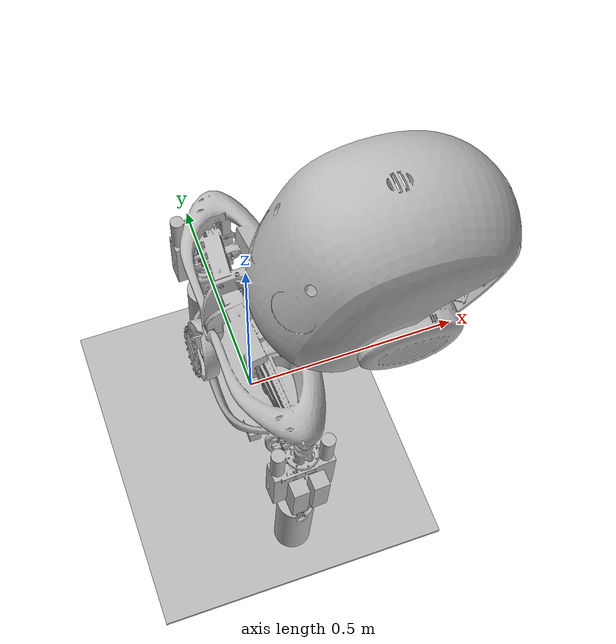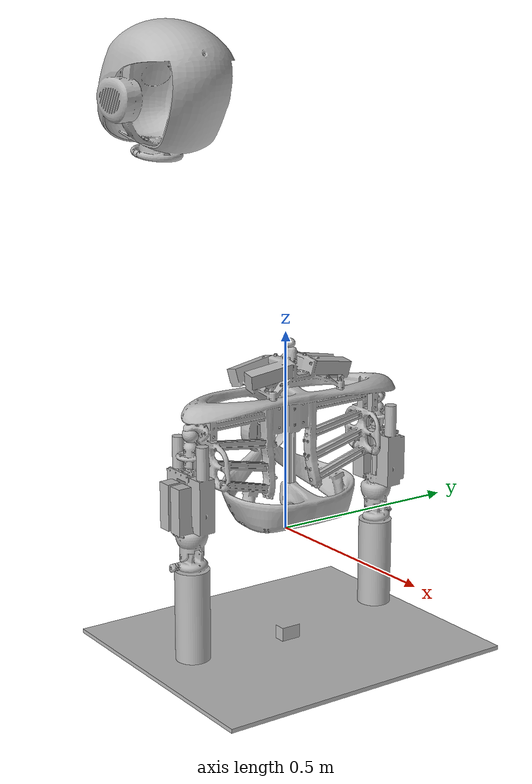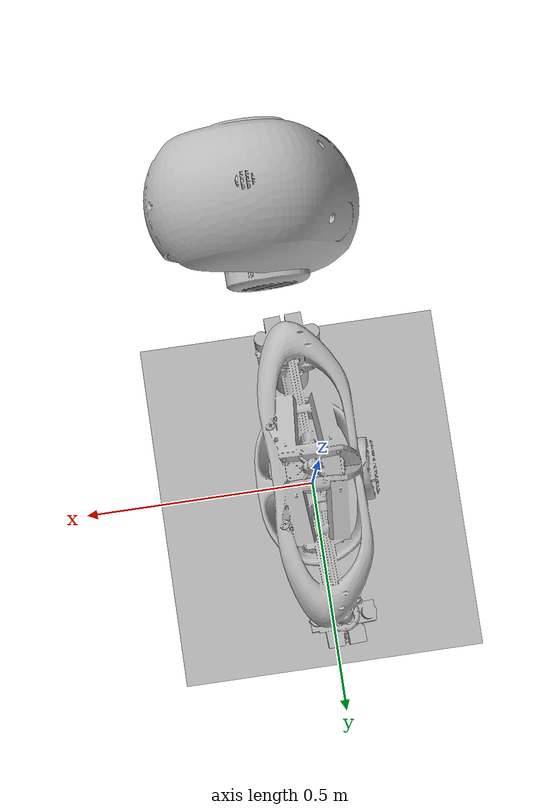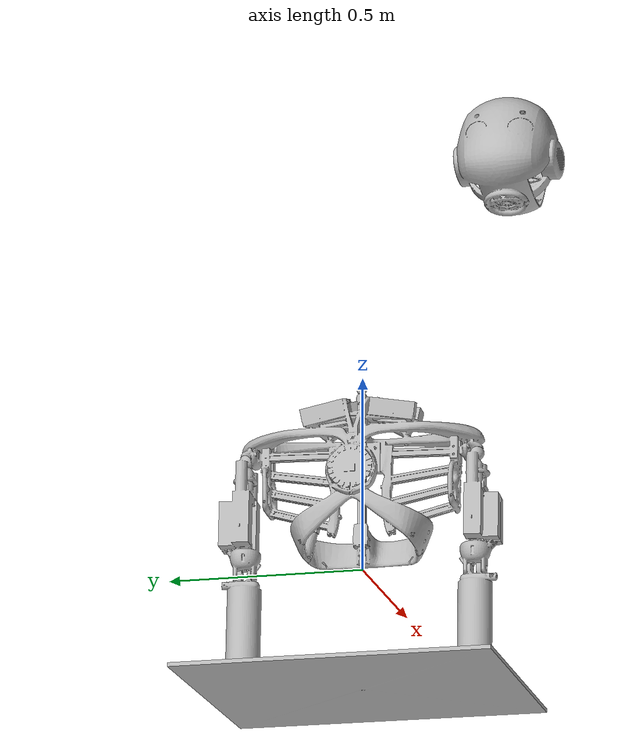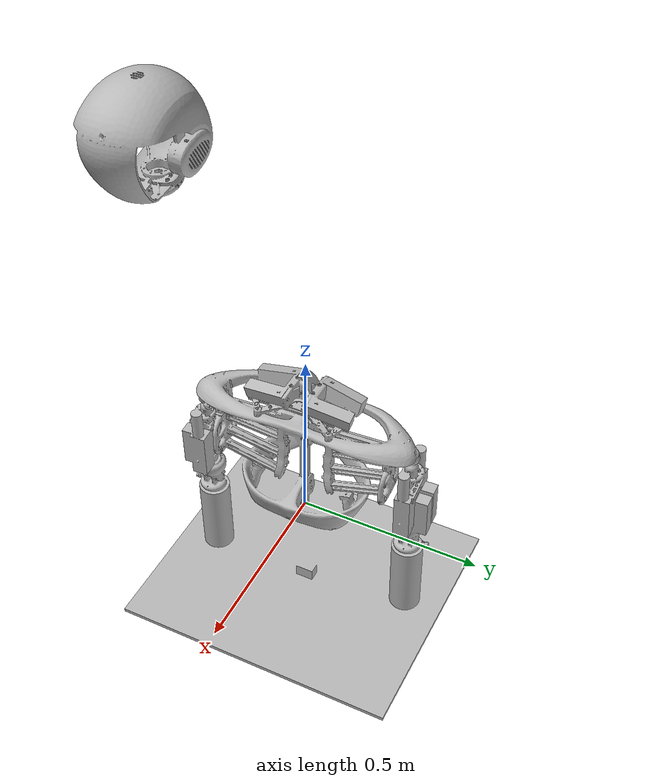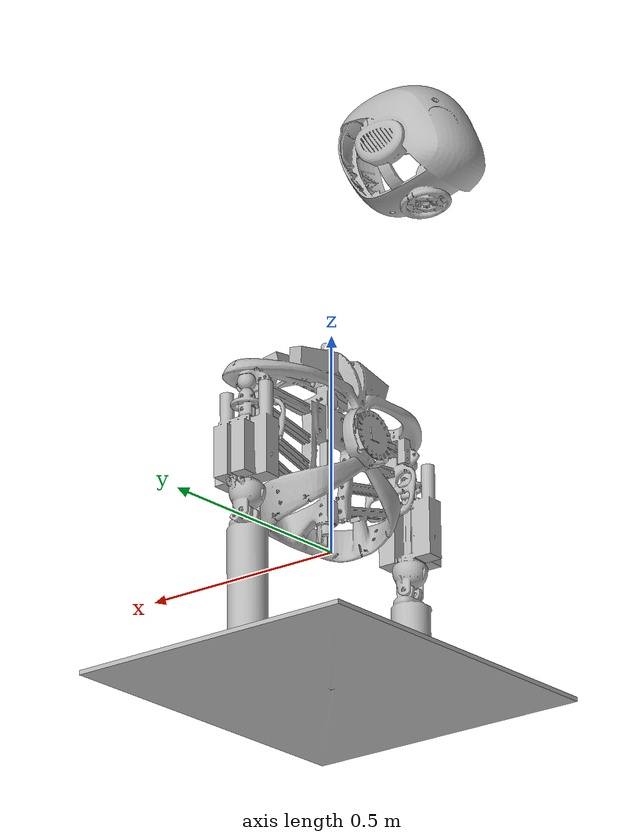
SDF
<?xml version="1.0" ?>
<sdf version="1.6">
	<model name="Roboy2.0_Head_simplified">
		<link name="torso">
			<pose frame="">0.0 -1.0880185641326535e-15 -0.3050000000000002 0.0 -0.0 0.0</pose>
			<inertial>
				<pose frame="">0.0 0.0 0.0 0 0 0</pose>
				<mass>59.0832718311782</mass>
				<inertia>
					<ixx>8.051001198805123</ixx>
					<ixy>0.004494269532617076</ixy>
					<ixz>0.04493051704857333</ixz>
					<iyy>7.279131576408602</iyy>
					<iyz>-0.009571163406070839</iyz>
					<izz>4.445459472256799</izz>
				</inertia>
			</inertial>
			<collision name="torso_collision">
				<geometry>
					<mesh>
						<uri>model://Roboy2.0_Head_simplified/meshes/CAD/torso.stl</uri>
						<scale>0.001 0.001 0.001</scale>
					</mesh>
				</geometry>
			</collision>
			<visual name="torso_visual">
				<geometry>
					<mesh>
						<uri>model://Roboy2.0_Head_simplified/meshes/CAD/torso.stl</uri>
						<scale>0.001 0.001 0.001</scale>
					</mesh>
				</geometry>
			</visual>
		</link>
		<link name="upper_arm_left">
			<pose frame="">0.018363141552214 -0.2871800561556848 0.2907779566488902 0.0 -0.0 0.0</pose>
			<inertial>
				<pose frame="">0.0 0.0 0.0 0 0 0</pose>
				<mass>15.908363752087764</mass>
				<inertia>
					<ixx>1.7625511434069268</ixx>
					<ixy>0.07244158478595611</ixy>
					<ixz>0.6251218203413375</ixz>
					<iyy>0.3634874621725613</iyy>
					<iyz>-0.032736028946414225</iyz>
					<izz>1.460574059311425</izz>
				</inertia>
			</inertial>
			<collision name="upper_arm_left_collision">
				<geometry>
					<mesh>
						<uri>model://Roboy2.0_Head_simplified/meshes/CAD/upper_arm_left.stl</uri>
						<scale>0.001 0.001 0.001</scale>
					</mesh>
				</geometry>
			</collision>
			<visual name="upper_arm_left_visual">
				<geometry>
					<mesh>
						<uri>model://Roboy2.0_Head_simplified/meshes/CAD/upper_arm_left.stl</uri>
						<scale>0.001 0.001 0.001</scale>
					</mesh>
				</geometry>
			</visual>
		</link>
		<link name="lower_arm_right">
			<pose frame="">-0.024273705526268313 0.3025621013405535 -0.268495305978832 0.0 -0.0 0.0</pose>
			<inertial>
				<pose frame="">0.0 0.0 0.0 0 0 0</pose>
				<mass>10.58051047901106</mass>
				<inertia>
					<ixx>1.2559639900199409</ixx>
					<ixy>0.06854200852489073</ixy>
					<ixz>0.48545353071933806</ixz>
					<iyy>0.30330590795286294</iyy>
					<iyz>-0.03574265591484113</iyz>
					<izz>0.9722516127680956</izz>
				</inertia>
			</inertial>
			<collision name="lower_arm_right_collision">
				<geometry>
					<mesh>
						<uri>model://Roboy2.0_Head_simplified/meshes/CAD/lower_arm_right.stl</uri>
						<scale>0.001 0.001 0.001</scale>
					</mesh>
				</geometry>
			</collision>
			<visual name="lower_arm_right_visual">
				<geometry>
					<mesh>
						<uri>model://Roboy2.0_Head_simplified/meshes/CAD/lower_arm_right.stl</uri>
						<scale>0.001 0.001 0.001</scale>
					</mesh>
				</geometry>
			</visual>
		</link>
		<link name="lower_arm_left">
			<pose frame="">0.00538123505847338 -0.28073995558559817 -0.27570325503368226 0.0 -0.0 0.0</pose>
			<inertial>
				<pose frame="">0.0 0.0 0.0 0 0 0</pose>
				<mass>11.180423145931053</mass>
				<inertia>
					<ixx>1.2126531732458716</ixx>
					<ixy>0.02702430066002528</ixy>
					<ixz>-0.48054023459331124</ixz>
					<iyy>0.32375849367990517</iyy>
					<iyz>0.012916596811184951</iyz>
					<izz>0.9006438580402119</izz>
				</inertia>
			</inertial>
			<collision name="lower_arm_left_collision">
				<geometry>
					<mesh>
						<uri>model://Roboy2.0_Head_simplified/meshes/CAD/lower_arm_left.stl</uri>
						<scale>0.001 0.001 0.001</scale>
					</mesh>
				</geometry>
			</collision>
			<visual name="lower_arm_left_visual">
				<geometry>
					<mesh>
						<uri>model://Roboy2.0_Head_simplified/meshes/CAD/lower_arm_left.stl</uri>
						<scale>0.001 0.001 0.001</scale>
					</mesh>
				</geometry>
			</visual>
		</link>
		<link name="upper_arm_right">
			<pose frame="">-0.011271527503434462 0.29602304272194446 0.2979843322630178 0.0 -0.0 0.0</pose>
			<inertial>
				<pose frame="">0.0 0.0 0.0 0 0 0</pose>
				<mass>14.719196946657304</mass>
				<inertia>
					<ixx>1.8047353374389559</ixx>
					<ixy>0.07012722555134064</ixy>
					<ixz>-0.673788689539285</ixz>
					<iyy>0.39312321166770187</iyy>
					<iyz>0.03284392115313039</iyz>
					<izz>1.471809237192228</izz>
				</inertia>
			</inertial>
			<collision name="upper_arm_right_collision">
				<geometry>
					<mesh>
						<uri>model://Roboy2.0_Head_simplified/meshes/CAD/upper_arm_right.stl</uri>
						<scale>0.001 0.001 0.001</scale>
					</mesh>
				</geometry>
			</collision>
			<visual name="upper_arm_right_visual">
				<geometry>
					<mesh>
						<uri>model://Roboy2.0_Head_simplified/meshes/CAD/upper_arm_right.stl</uri>
						<scale>0.001 0.001 0.001</scale>
					</mesh>
				</geometry>
			</visual>
		</link>
		<link name="head">
			<pose frame="">0.010674885790744292 0.005000000000001146 0.47340797755942354 0.0 -0.0 0.0</pose>
			<inertial>
				<pose frame="">0.0 0.0 0.0 0 0 0</pose>
				<mass>2.1752108706476503</mass>
				<inertia>
					<ixx>0.8451378573180605</ixx>
					<ixy>-0.00046727522854294495</ixy>
					<ixz>-0.005715381623468909</ixz>
					<iyy>0.8577903362812495</iyy>
					<iyz>-0.07402430273698146</iyz>
					<izz>0.03262463725323261</izz>
				</inertia>
			</inertial>
			<collision name="head_collision">
				<geometry>
					<mesh>
						<uri>model://Roboy2.0_Head_simplified/meshes/CAD/head.stl</uri>
						<scale>0.001 0.001 0.001</scale>
					</mesh>
				</geometry>
			</collision>
			<visual name="head_visual">
				<geometry>
					<mesh>
						<uri>model://Roboy2.0_Head_simplified/meshes/CAD/head.stl</uri>
						<scale>0.001 0.001 0.001</scale>
					</mesh>
				</geometry>
			</visual>
		</link>
		<joint name="left_shoulder" type="revolute">
			<parent>torso</parent>
			<child>upper_arm_left</child>
			<pose frame="">6.661338147750939e-18 -2.842170943040401e-16 -1.4210854715202004e-16 0 0 0</pose>
			<axis>
				<xyz>-0.9984488883025698 -0.051010494316672275 0.022310242422104793</xyz>
				<limit>
					<lower>-0.0</lower>
					<upper>-0.0</upper>
				</limit>
				<use_parent_model_frame>0</use_parent_model_frame>
			</axis>
		</joint>
		<joint name="right_shoulder" type="revolute">
			<parent>torso</parent>
			<child>upper_arm_right</child>
			<pose frame="">0.0 -3.552713678800501e-17 0.0 0 0 0</pose>
			<axis>
				<xyz>0.9984488883025716 0.05101049431667234 -0.022310242422104807</xyz>
				<limit>
					<lower>-0.0</lower>
					<upper>-0.0</upper>
				</limit>
				<use_parent_model_frame>0</use_parent_model_frame>
			</axis>
		</joint>
		<joint name="neck" type="revolute">
			<parent>torso</parent>
			<child>head</child>
			<pose frame="">2.220446049250313e-18 0.0 0.0 0 0 0</pose>
			<axis>
				<xyz>-2.3337480885752904e-16 -1.0000000000000018 3.594347042223944e-15</xyz>
				<limit>
					<lower>-0.0</lower>
					<upper>-0.0</upper>
				</limit>
				<use_parent_model_frame>0</use_parent_model_frame>
			</axis>
		</joint>
		<joint name="elbow_left" type="revolute">
			<parent>upper_arm_left</parent>
			<child>lower_arm_left</child>
			<pose frame="">0.0010837244328919559 0.0229265660548478 0.26581834110041874 0 0 0</pose>
			<axis>
				<xyz>1.056555017087124e-15 0.9999373747285498 0.011191363678141941</xyz>
				<limit>
					<lower>-1.5707963267948966</lower>
					<upper>-0.0</upper>
				</limit>
				<use_parent_model_frame>0</use_parent_model_frame>
			</axis>
		</joint>
		<joint name="elbow_right" type="revolute">
			<parent>upper_arm_right</parent>
			<child>lower_arm_right</child>
			<pose frame="">0.003765054676937636 -0.029541382145029545 0.2651696678513797 0 0 0</pose>
			<axis>
				<xyz>0.10135777399865124 -0.9947590323866654 -0.013456193190960529</xyz>
				<limit>
					<lower>0.0</lower>
					<upper>1.5707963267948966</upper>
				</limit>
				<use_parent_model_frame>0</use_parent_model_frame>
			</axis>
		</joint>
		<plugin filename="libmyomuscle_plugin.so" name="myomuscle_plugin">
			<myoMuscle name="motor0">
				<link name="torso">
					<viaPoint type="FIXPOINT">-0.03384098771323268 0.05630415696557444 0.7385367166308674</viaPoint>
				</link>
				<link name="head">
					<viaPoint type="FIXPOINT">0.014607692256464626 0.04976406017740002 0.00996255256440854</viaPoint>
				</link>
			</myoMuscle>
			<myoMuscle name="motor1">
				<link name="torso">
					<viaPoint type="FIXPOINT">0.05415247865793714 0.0562451101485863 0.7387330293237646</viaPoint>
				</link>
				<link name="head">
					<viaPoint type="FIXPOINT">-0.012633145075212673 0.04976406017740003 0.014765847163073574</viaPoint>
				</link>
			</myoMuscle>
			<myoMuscle name="motor2">
				<link name="torso">
					<viaPoint type="FIXPOINT">-0.03384098771323254 -0.04630415696557066 0.7385367166308674</viaPoint>
				</link>
				<link name="head">
					<viaPoint type="FIXPOINT">0.014607692256464626 -0.049764060177400066 0.009962552564408896</viaPoint>
				</link>
			</myoMuscle>
			<myoMuscle name="motor3">
				<link name="torso">
					<viaPoint type="FIXPOINT">0.054152478657937105 -0.04624511014858234 0.7387330293237645</viaPoint>
				</link>
				<link name="head">
					<viaPoint type="FIXPOINT">-0.012633145075212678 -0.04976406017740005 0.014765847163073928</viaPoint>
				</link>
			</myoMuscle>
			<myoMuscle name="motor4">
				<link name="torso">
					<viaPoint type="FIXPOINT">-0.01483455387279692 -0.2350353945194016 0.5137940494831844</viaPoint>
				</link>
				<link name="upper_arm_left">
					<viaPoint type="FIXPOINT">-0.021942107700950782 0.01631197670286891 -0.0482285681067582</viaPoint>
				</link>
			</myoMuscle>
			<myoMuscle name="motor5">
				<link name="torso">
					<viaPoint type="FIXPOINT">-0.017992519866605893 -0.2462180133128351 0.5610590997255821</viaPoint>
				</link>
				<link name="upper_arm_left">
					<viaPoint type="FIXPOINT">-0.0309622426232788 0.0015141634249904712 -0.04818747444886906</viaPoint>
				</link>
			</myoMuscle>
			<myoMuscle name="motor6">
				<link name="torso">
					<viaPoint type="FIXPOINT">-0.01785951453957833 -0.2756366529259057 0.6045004259562059</viaPoint>
				</link>
				<link name="upper_arm_left">
					<viaPoint type="FIXPOINT">-0.023007381902752505 -0.019968221295691216 -0.048610205854953285</viaPoint>
				</link>
			</myoMuscle>
			<myoMuscle name="motor7">
				<link name="torso">
					<viaPoint type="FIXPOINT">-1.4729486754712086e-05 -0.2839410922378461 0.6227546353826119</viaPoint>
				</link>
				<link name="upper_arm_left">
					<viaPoint type="FIXPOINT">-0.0020971297814030287 -0.02943536175960908 -0.0491953567092936</viaPoint>
				</link>
			</myoMuscle>
			<myoMuscle name="motor8">
				<link name="torso">
					<viaPoint type="FIXPOINT">0.036750491561056836 -0.28154017004563126 0.6226408124917601</viaPoint>
				</link>
				<link name="upper_arm_left">
					<viaPoint type="FIXPOINT">0.002890779232074219 -0.029180530783917327 -0.04930681104669013</viaPoint>
				</link>
			</myoMuscle>
			<myoMuscle name="motor9">
				<link name="torso">
					<viaPoint type="FIXPOINT">0.05357398480402451 -0.2719871340021262 0.6029042514238024</viaPoint>
				</link>
				<link name="upper_arm_left">
					<viaPoint type="FIXPOINT">0.021838232955736992 -0.017155589813627258 -0.04960644027252059</viaPoint>
				</link>
			</myoMuscle>
			<myoMuscle name="motor10">
				<link name="torso">
					<viaPoint type="FIXPOINT">0.05358128585563297 -0.2425613261726221 0.5594597900609108</viaPoint>
				</link>
				<link name="upper_arm_left">
					<viaPoint type="FIXPOINT">0.028469237831271376 0.004550502321734023 -0.04951546504706553</viaPoint>
				</link>
			</myoMuscle>
			<myoMuscle name="motor11">
				<link name="torso">
					<viaPoint type="FIXPOINT">0.06073304740265194 -0.23117466540192097 0.5121054988488318</viaPoint>
				</link>
				<link name="upper_arm_left">
					<viaPoint type="FIXPOINT">0.020144555511667044 0.017076065898249268 -0.04918450387048978</viaPoint>
				</link>
			</myoMuscle>
			<myoMuscle name="motor12">
				<link name="torso">
					<viaPoint type="FIXPOINT">-0.03911606041186026 0.2428187644862974 0.5196986761307363</viaPoint>
				</link>
				<link name="upper_arm_right">
					<viaPoint type="FIXPOINT">-0.017945097205140023 -0.01825641293299075 -0.04870705805269143</viaPoint>
				</link>
			</myoMuscle>
			<myoMuscle name="motor13">
				<link name="torso">
					<viaPoint type="FIXPOINT">-0.046126789493382454 0.2806564617003341 0.6113742871261221</viaPoint>
				</link>
				<link name="upper_arm_right">
					<viaPoint type="FIXPOINT">-0.030709674431894193 -0.0034563173189218334 -0.048248892420228486</viaPoint>
				</link>
			</myoMuscle>
			<myoMuscle name="motor14">
				<link name="torso">
					<viaPoint type="FIXPOINT">-0.02919269987544973 0.29027428765023094 0.6298499538383028</viaPoint>
				</link>
				<link name="upper_arm_right">
					<viaPoint type="FIXPOINT">-0.024973552348041664 0.018725536156459024 -0.04813208468128561</viaPoint>
				</link>
			</myoMuscle>
			<myoMuscle name="motor15">
				<link name="torso">
					<viaPoint type="FIXPOINT">0.007626372662497845 0.29161542557870074 0.6297230356749992</viaPoint>
				</link>
				<link name="upper_arm_right">
					<viaPoint type="FIXPOINT">-0.00014330681921681743 0.030529546762418605 -0.04856900075800073</viaPoint>
				</link>
			</myoMuscle>
			<myoMuscle name="motor16">
				<link name="torso">
					<viaPoint type="FIXPOINT">0.025306709850220512 0.2843059806241136 0.6097781125937186</viaPoint>
				</link>
				<link name="upper_arm_right">
					<viaPoint type="FIXPOINT">0.020766945302131887 0.02106240629849893 -0.04915415161234101</viaPoint>
				</link>
			</myoMuscle>
			<myoMuscle name="motor17">
				<link name="torso">
					<viaPoint type="FIXPOINT">0.028241874921254694 0.2561121347292921 0.5656216713591613</viaPoint>
				</link>
				<link name="upper_arm_right">
					<viaPoint type="FIXPOINT">0.028721806022656355 -0.00041997842218346906 -0.049576883018425055</viaPoint>
				</link>
			</myoMuscle>
			<myoMuscle name="motor18">
				<link name="torso">
					<viaPoint type="FIXPOINT">0.03645154086358869 0.24667949360377797 0.5180101254963837</viaPoint>
				</link>
				<link name="upper_arm_right">
					<viaPoint type="FIXPOINT">0.01721623627467749 -0.015481794310248702 -0.04948178612672081</viaPoint>
				</link>
			</myoMuscle>
			<myoMuscle name="motor19">
				<link name="upper_arm_left">
					<viaPoint type="FIXPOINT">-0.06847161360253574 -0.0021043888499208308 -0.18342236190019778</viaPoint>
				</link>
				<link name="lower_arm_left">
					<viaPoint type="FIXPOINT">0.005269128011825208 -0.0025733380925928627 0.22992523615526914</viaPoint>
				</link>
			</myoMuscle>
			<myoMuscle name="motor20">
				<link name="upper_arm_left">
					<viaPoint type="FIXPOINT">0.06033432584166306 -0.0003489498110566913 -0.1863545221829937</viaPoint>
				</link>
				<link name="lower_arm_left">
					<viaPoint type="FIXPOINT">0.005269128011825208 -0.0025733380925928627 0.22992523615526914</viaPoint>
				</link>
			</myoMuscle>
			<myoMuscle name="motor21">
				<link name="upper_arm_left">
					<viaPoint type="FIXPOINT">-0.009826290899584499 -0.04754388683408802 -0.21229211831907888</viaPoint>
				</link>
				<link name="lower_arm_left">
					<viaPoint type="FIXPOINT">0.0005625389447661522 -0.05141422539726527 0.2422408604894534</viaPoint>
				</link>
			</myoMuscle>
			<myoMuscle name="motor22">
				<link name="upper_arm_left">
					<viaPoint type="FIXPOINT">0.004896716479717287 -0.04178555243096266 -0.21256507343431782</viaPoint>
				</link>
				<link name="lower_arm_left">
					<viaPoint type="FIXPOINT">0.0005625389447663953 -0.046714519736041 0.24229345989874074</viaPoint>
				</link>
			</myoMuscle>
			<myoMuscle name="motor23">
				<link name="upper_arm_right">
					<viaPoint type="FIXPOINT">-0.06880652594784026 0.004486605076290111 -0.18334091998424448</viaPoint>
				</link>
				<link name="lower_arm_right">
					<viaPoint type="FIXPOINT">0.005269128011825093 -0.002573338092591442 0.22992523615526925</viaPoint>
				</link>
			</myoMuscle>
			<myoMuscle name="motor24">
				<link name="upper_arm_right">
					<viaPoint type="FIXPOINT">0.05999941349635938 0.006242044115143095 -0.18627308026704054</viaPoint>
				</link>
				<link name="lower_arm_right">
					<viaPoint type="FIXPOINT">0.005269128011825093 -0.002573338092591442 0.22992523615526925</viaPoint>
				</link>
			</myoMuscle>
			<myoMuscle name="motor25">
				<link name="upper_arm_right">
					<viaPoint type="FIXPOINT">0.00011660377606193429 0.05228590632688601 -0.21140267517624556</viaPoint>
				</link>
				<link name="lower_arm_right">
					<viaPoint type="FIXPOINT">-0.004124840980890663 0.04303213621211839 0.24340532821578673</viaPoint>
				</link>
			</myoMuscle>
			<myoMuscle name="motor26">
				<link name="upper_arm_right">
					<viaPoint type="FIXPOINT">-0.014606403603239754 0.046527571923761855 -0.21112972006100642</viaPoint>
				</link>
				<link name="lower_arm_right">
					<viaPoint type="FIXPOINT">-0.003516694336898634 0.03706358201779779 0.24332459105664098</viaPoint>
				</link>
			</myoMuscle>
		</plugin>
	</model>
</sdf>
